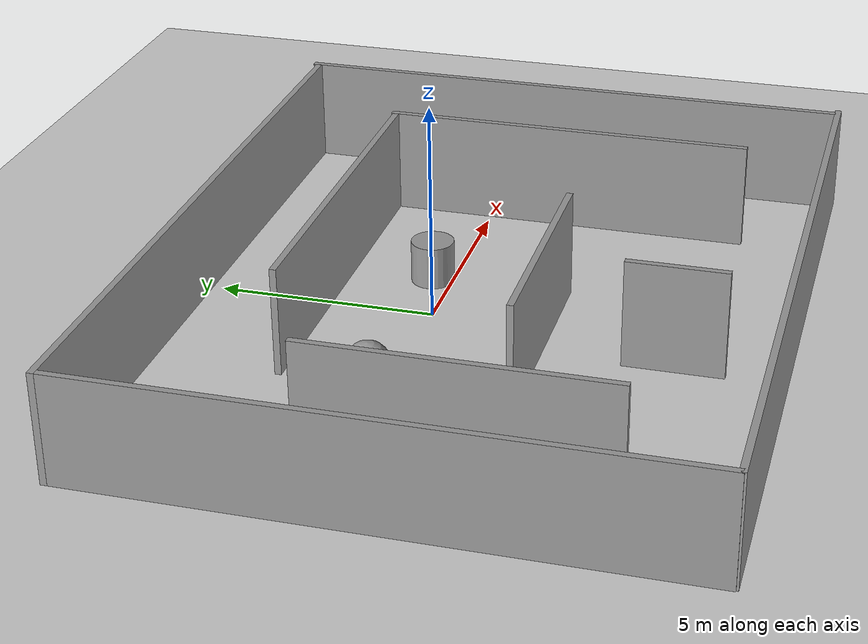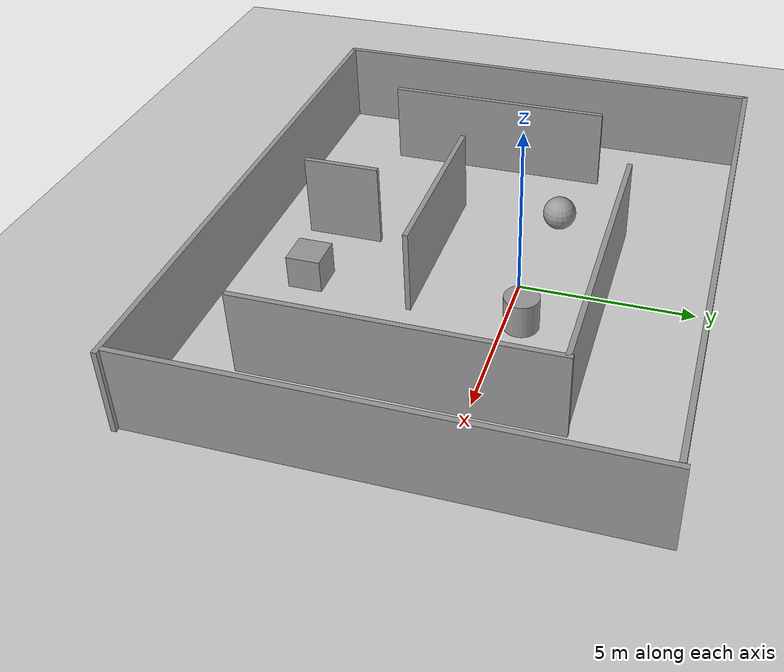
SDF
<sdf version="1.7">
 <world name="default">
  <light name="sun" type="directional">
   <pose>0 0 10 0 -0 0</pose>
   <diffuse>0.8 0.8 0.8 1</diffuse>
   <specular>0.2 0.2 0.2 1</specular>
   <attenuation>
    <range>1000</range>
    <constant>0.9</constant>
    <linear>0.01</linear>
    <quadratic>0.001</quadratic>
   </attenuation>
   <direction>-0.5 0.1 -0.9</direction>
   <spot><inner_angle>0</inner_angle><outer_angle>0</outer_angle><falloff>0</falloff></spot>
  </light>
  <model name="ground_plane">
   <static>1</static>
   <link name="link">
    <collision name="collision">
     <geometry><plane><normal>0 0 1</normal><size>100 100</size></plane></geometry>
     <surface><friction><ode><mu>100</mu><mu2>50</mu2></ode></friction></surface>
    </collision>
    <visual name="visual">
     <cast_shadows>0</cast_shadows>
     <geometry><plane><normal>0 0 1</normal><size>100 100</size></plane></geometry>
     <material>
      <script><uri>file://media/materials/scripts/gazebo.material</uri><name>Gazebo/Grey</name></script>
     </material>
    </visual>
   </link>
  </model>
  <gravity>0 0 -9.8</gravity>
  <magnetic_field>6e-06 2.3e-05 -4.2e-05</magnetic_field>
  <atmosphere type="adiabatic"/>
  <physics type="ode">
   <max_step_size>0.001</max_step_size>
   <real_time_factor>1</real_time_factor>
   <real_time_update_rate>1000</real_time_update_rate>
  </physics>
  <scene><ambient>0.4 0.4 0.4 1</ambient><background>0.7 0.7 0.7 1</background><shadows>1</shadows></scene>
  <audio><device>default</device></audio>
  <spherical_coordinates>
   <surface_model>EARTH_WGS84</surface_model>
   <latitude_deg>0</latitude_deg>
   <longitude_deg>0</longitude_deg>
   <elevation>0</elevation>
   <heading_deg>0</heading_deg>
  </spherical_coordinates>
  <model name="simple_env">
   <pose>-0.155928 -1.32393 0 0 -0 0</pose>
   <link name="Wall_0">
    <collision name="Wall_0_Collision">
     <geometry><box><size>16.75 0.15 2.5</size></box></geometry>
     <pose>0 0 1.25 0 -0 0</pose>
    </collision>
    <visual name="Wall_0_Visual">
     <pose>0 0 1.25 0 -0 0</pose>
     <geometry><box><size>16.75 0.15 2.5</size></box></geometry>
     <material>
      <script><uri>file://media/materials/scripts/gazebo.material</uri><name>Gazebo/Grey</name></script>
      <ambient>1 1 1 1</ambient>
     </material>
     <meta><layer>0</layer></meta>
    </visual>
    <pose>0.010916 -6.73709 0 0 -0 3.14159</pose>
   </link>
   <link name="Wall_10">
    <collision name="Wall_10_Collision">
     <geometry><box><size>8.75 0.15 2.5</size></box></geometry>
     <pose>0 0 1.25 0 -0 0</pose>
    </collision>
    <visual name="Wall_10_Visual">
     <pose>0 0 1.25 0 -0 0</pose>
     <geometry><box><size>8.75 0.15 2.5</size></box></geometry>
     <material>
      <script><uri>file://media/materials/scripts/gazebo.material</uri><name>Gazebo/Grey</name></script>
      <ambient>1 1 1 1</ambient>
     </material>
     <meta><layer>0</layer></meta>
    </visual>
    <pose>5.52489 -0.508559 0 0 -0 1.5708</pose>
   </link>
   <link name="Wall_12">
    <collision name="Wall_12_Collision">
     <geometry><box><size>6.75 0.15 2.5</size></box></geometry>
     <pose>0 0 1.25 0 -0 0</pose>
    </collision>
    <visual name="Wall_12_Visual">
     <pose>0 0 1.25 0 -0 0</pose>
     <geometry><box><size>6.75 0.15 2.5</size></box></geometry>
     <material>
      <script><uri>file://media/materials/scripts/gazebo.material</uri><name>Gazebo/Grey</name></script>
      <ambient>1 1 1 1</ambient>
     </material>
     <meta><layer>0</layer></meta>
    </visual>
    <pose>-5.92404 -0.921907 0 0 -0 1.5708</pose>
   </link>
   <link name="Wall_14">
    <collision name="Wall_14_Collision">
     <geometry><box><size>5.5 0.15 2.5</size></box></geometry>
     <pose>0 0 1.25 0 -0 0</pose>
    </collision>
    <visual name="Wall_14_Visual">
     <pose>0 0 1.25 0 -0 0</pose>
     <geometry><box><size>5.5 0.15 2.5</size></box></geometry>
     <material>
      <script><uri>file://media/materials/scripts/gazebo.material</uri><name>Gazebo/Grey</name></script>
      <ambient>1 1 1 1</ambient>
     </material>
     <meta><layer>0</layer></meta>
    </visual>
    <pose>-0.750654 -1.38687 0 0 -0 3.14159</pose>
   </link>
   <link name="Wall_16">
    <collision name="Wall_16_Collision">
     <geometry><box><size>2.25 0.15 2.5</size></box></geometry>
     <pose>0 0 1.25 0 -0 0</pose>
    </collision>
    <visual name="Wall_16_Visual">
     <pose>0 0 1.25 0 -0 0</pose>
     <geometry><box><size>2.25 0.15 2.5</size></box></geometry>
     <material>
      <script><uri>file://media/materials/scripts/gazebo.material</uri><name>Gazebo/Grey</name></script>
      <ambient>1 1 1 1</ambient>
     </material>
     <meta><layer>0</layer></meta>
    </visual>
    <pose>-0.948 -4.34197 0 0 -0 1.5708</pose>
   </link>
   <link name="Wall_2">
    <collision name="Wall_2_Collision">
     <geometry><box><size>13.5 0.15 2.5</size></box></geometry>
     <pose>0 0 1.25 0 -0 0</pose>
    </collision>
    <visual name="Wall_2_Visual">
     <pose>0 0 1.25 0 -0 0</pose>
     <geometry><box><size>13.5 0.15 2.5</size></box></geometry>
     <material>
      <script><uri>file://media/materials/scripts/gazebo.material</uri><name>Gazebo/Grey</name></script>
      <ambient>1 1 1 1</ambient>
     </material>
     <meta><layer>0</layer></meta>
    </visual>
    <pose>-8.31091 -0.01513 0 0 -0 -1.5708</pose>
   </link>
   <link name="Wall_4">
    <collision name="Wall_4_Collision">
     <geometry><box><size>16.5 0.15 2.5</size></box></geometry>
     <pose>0 0 1.25 0 -0 0</pose>
    </collision>
    <visual name="Wall_4_Visual">
     <pose>0 0 1.25 0 -0 0</pose>
     <geometry><box><size>16.5 0.15 2.5</size></box></geometry>
     <material>
      <script><uri>file://media/materials/scripts/gazebo.material</uri><name>Gazebo/Grey</name></script>
      <ambient>1 1 1 1</ambient>
     </material>
     <meta><layer>0</layer></meta>
    </visual>
    <pose>-0.135915 6.65987 0 0 -0 3.14159</pose>
   </link>
   <link name="Wall_6">
    <collision name="Wall_6_Collision">
     <geometry><box><size>13.5 0.15 2.5</size></box></geometry>
     <pose>0 0 1.25 0 -0 0</pose>
    </collision>
    <visual name="Wall_6_Visual">
     <pose>0 0 1.25 0 -0 0</pose>
     <geometry><box><size>13.5 0.15 2.5</size></box></geometry>
     <material>
      <script><uri>file://media/materials/scripts/gazebo.material</uri><name>Gazebo/Grey</name></script>
      <ambient>1 1 1 1</ambient>
     </material>
     <meta><layer>0</layer></meta>
    </visual>
    <pose>8.19496 0.062091 0 0 -0 1.5708</pose>
   </link>
   <link name="Wall_8">
    <collision name="Wall_8_Collision">
     <geometry><box><size>8.75 0.15 2.5</size></box></geometry>
     <pose>0 0 1.25 0 -0 0</pose>
    </collision>
    <visual name="Wall_8_Visual">
     <pose>0 0 1.25 0 -0 0</pose>
     <geometry><box><size>8.75 0.15 2.5</size></box></geometry>
     <material>
      <script><uri>file://media/materials/scripts/gazebo.material</uri><name>Gazebo/Grey</name></script>
      <ambient>1 1 1 1</ambient>
     </material>
     <meta><layer>0</layer></meta>
    </visual>
    <pose>1.14398 3.75099 0 0 -0 3.14159</pose>
   </link>
   <static>1</static>
  </model>
  <model name="unit_box">
   <pose>1.24822 -5.82266 0.499995 0 1e-05 0</pose>
   <link name="link">
    <inertial>
     <mass>1</mass>
     <inertia>
      <ixx>0.166667</ixx>
      <ixy>0</ixy>
      <ixz>0</ixz>
      <iyy>0.166667</iyy>
      <iyz>0</iyz>
      <izz>0.166667</izz>
     </inertia>
    </inertial>
    <collision name="collision"><geometry><box><size>1 1 1</size></box></geometry></collision>
    <visual name="visual">
     <geometry><box><size>1 1 1</size></box></geometry>
     <material>
      <script><name>Gazebo/Grey</name><uri>file://media/materials/scripts/gazebo.material</uri></script>
     </material>
    </visual>
   </link>
  </model>
  <model name="unit_sphere">
   <pose>-3.28125 0.447977 0.5 0 -0 0</pose>
   <link name="link">
    <inertial>
     <mass>1</mass>
     <inertia><ixx>0.1</ixx><ixy>0</ixy><ixz>0</ixz><iyy>0.1</iyy><iyz>0</iyz><izz>0.1</izz></inertia>
    </inertial>
    <collision name="collision"><geometry><sphere><radius>0.5</radius></sphere></geometry></collision>
    <visual name="visual">
     <geometry><sphere><radius>0.5</radius></sphere></geometry>
     <material>
      <script><name>Gazebo/Grey</name><uri>file://media/materials/scripts/gazebo.material</uri></script>
     </material>
    </visual>
   </link>
  </model>
  <model name="unit_cylinder">
   <pose>1.67848 0.463744 0.499997 3e-06 4e-06 -0</pose>
   <link name="link">
    <inertial>
     <mass>1</mass>
     <inertia><ixx>0.145833</ixx><ixy>0</ixy><ixz>0</ixz><iyy>0.145833</iyy><iyz>0</iyz><izz>0.125</izz></inertia>
    </inertial>
    <collision name="collision">
     <geometry><cylinder><radius>0.5</radius><length>1</length></cylinder></geometry>
    </collision>
    <visual name="visual">
     <geometry><cylinder><radius>0.5</radius><length>1</length></cylinder></geometry>
     <material>
      <script><name>Gazebo/Grey</name><uri>file://media/materials/scripts/gazebo.material</uri></script>
     </material>
    </visual>
   </link>
  </model>
 </world>
</sdf>
